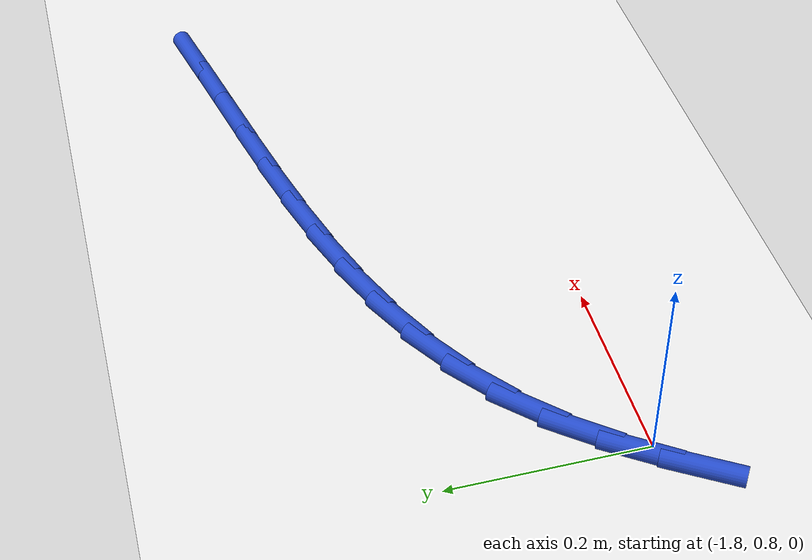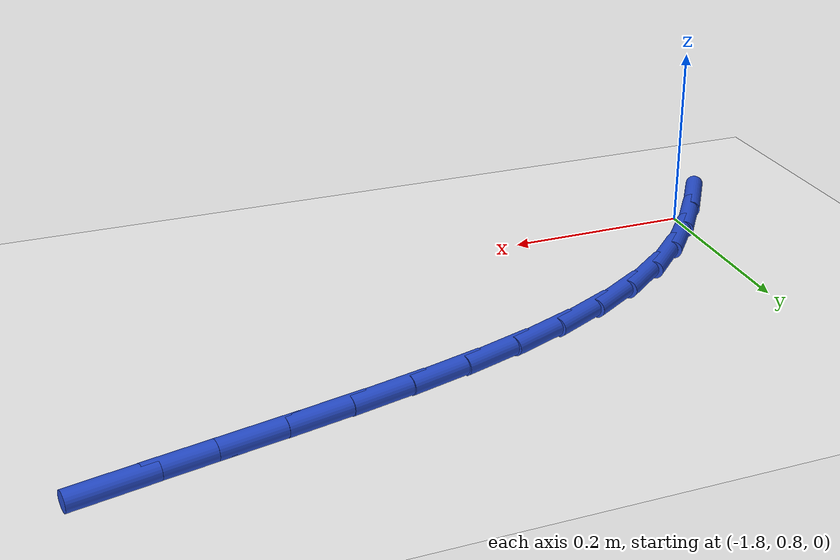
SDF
<sdf version="1.6">
 <world name="default">
  <model name="ground_plane">
   <static>1</static>
   <link name="link">
    <collision name="collision">
     <geometry><plane><normal>0 0 1</normal><size>100 100</size></plane></geometry>
     <surface><friction><ode><mu>100</mu><mu2>50</mu2></ode></friction></surface>
    </collision>
    <visual name="visual">
     <cast_shadows>0</cast_shadows>
     <geometry><plane><normal>0 0 1</normal><size>100 100</size></plane></geometry>
     <material>
      <script><uri>file://media/materials/scripts/gazebo.material</uri><name>Gazebo/WhiteGlow</name></script>
     </material>
    </visual>
   </link>
  </model>
  <model name="line">
   <link name="link_32">
    <pose>-1.1168090828954487 1.1126430414281687 0.01 0 1.57 0.21446894191371113</pose>
    <collision name="collision">
     <geometry><cylinder><radius>0.01</radius><length>0.08</length></cylinder></geometry>
    </collision>
    <visual name="visual">
     <material>
      <script><name>Gazebo/Blue</name><uri>file://media/materials/scripts/gazebo.material</uri></script>
     </material>
     <geometry><cylinder><radius>0.01</radius><length>0.08</length></cylinder></geometry>
    </visual>
   </link>
   <link name="link_33">
    <pose>-1.1804269312159106 1.098785872033754 0.01 0 1.57 0.20922212460255044</pose>
    <collision name="collision">
     <geometry><cylinder><radius>0.01</radius><length>0.08</length></cylinder></geometry>
    </collision>
    <visual name="visual">
     <material>
      <script><name>Gazebo/Blue</name><uri>file://media/materials/scripts/gazebo.material</uri></script>
     </material>
     <geometry><cylinder><radius>0.01</radius><length>0.08</length></cylinder></geometry>
    </visual>
   </link>
   <link name="link_34">
    <pose>-1.243558973728151 1.085381085537166 0.01 0 1.57 0.21056571889571146</pose>
    <collision name="collision">
     <geometry><cylinder><radius>0.01</radius><length>0.08</length></cylinder></geometry>
    </collision>
    <visual name="visual">
     <material>
      <script><name>Gazebo/Blue</name><uri>file://media/materials/scripts/gazebo.material</uri></script>
     </material>
     <geometry><cylinder><radius>0.01</radius><length>0.08</length></cylinder></geometry>
    </visual>
   </link>
   <link name="link_35">
    <pose>-1.3058577739040838 1.072065717823352 0.01 0 1.57 0.22224273042556789</pose>
    <collision name="collision">
     <geometry><cylinder><radius>0.01</radius><length>0.08</length></cylinder></geometry>
    </collision>
    <visual name="visual">
     <material>
      <script><name>Gazebo/Blue</name><uri>file://media/materials/scripts/gazebo.material</uri></script>
     </material>
     <geometry><cylinder><radius>0.01</radius><length>0.08</length></cylinder></geometry>
    </visual>
   </link>
   <link name="link_36">
    <pose>-1.3669779849305703 1.058254048390244 0.01 0 1.57 0.2448937818311748</pose>
    <collision name="collision">
     <geometry><cylinder><radius>0.01</radius><length>0.08</length></cylinder></geometry>
    </collision>
    <visual name="visual">
     <material>
      <script><name>Gazebo/Blue</name><uri>file://media/materials/scripts/gazebo.material</uri></script>
     </material>
     <geometry><cylinder><radius>0.01</radius><length>0.08</length></cylinder></geometry>
    </visual>
   </link>
   <link name="link_37">
    <pose>-1.4265742600175444 1.0433603542765746 0.01 0 1.57 0.27938862172942175</pose>
    <collision name="collision">
     <geometry><cylinder><radius>0.01</radius><length>0.08</length></cylinder></geometry>
    </collision>
    <visual name="visual">
     <material>
      <script><name>Gazebo/Blue</name><uri>file://media/materials/scripts/gazebo.material</uri></script>
     </material>
     <geometry><cylinder><radius>0.01</radius><length>0.08</length></cylinder></geometry>
    </visual>
   </link>
   <link name="link_38">
    <pose>-1.4843012523749377 1.0267989125210755 0.01 0 1.57 0.32678080154570166</pose>
    <collision name="collision">
     <geometry><cylinder><radius>0.01</radius><length>0.08</length></cylinder></geometry>
    </collision>
    <visual name="visual">
     <material>
      <script><name>Gazebo/Blue</name><uri>file://media/materials/scripts/gazebo.material</uri></script>
     </material>
     <geometry><cylinder><radius>0.01</radius><length>0.08</length></cylinder></geometry>
    </visual>
   </link>
   <link name="link_39">
    <pose>-1.5398136152126836 1.007984000162478 0.01 0 1.57 0.38818550506036686</pose>
    <collision name="collision">
     <geometry><cylinder><radius>0.01</radius><length>0.08</length></cylinder></geometry>
    </collision>
    <visual name="visual">
     <material>
      <script><name>Gazebo/Blue</name><uri>file://media/materials/scripts/gazebo.material</uri></script>
     </material>
     <geometry><cylinder><radius>0.01</radius><length>0.08</length></cylinder></geometry>
    </visual>
   </link>
   <link name="link_40">
    <pose>-1.5927660017407144 0.9863298942395147 0.01 0 1.57 0.46453423237397157</pose>
    <collision name="collision">
     <geometry><cylinder><radius>0.01</radius><length>0.08</length></cylinder></geometry>
    </collision>
    <visual name="visual">
     <material>
      <script><name>Gazebo/Blue</name><uri>file://media/materials/scripts/gazebo.material</uri></script>
     </material>
     <geometry><cylinder><radius>0.01</radius><length>0.08</length></cylinder></geometry>
    </visual>
   </link>
   <link name="link_41">
    <pose>-1.6428130651689627 0.9612508717909167 0.01 0 1.57 0.5561664135093526</pose>
    <collision name="collision">
     <geometry><cylinder><radius>0.01</radius><length>0.08</length></cylinder></geometry>
    </collision>
    <visual name="visual">
     <material>
      <script><name>Gazebo/Blue</name><uri>file://media/materials/scripts/gazebo.material</uri></script>
     </material>
     <geometry><cylinder><radius>0.01</radius><length>0.08</length></cylinder></geometry>
    </visual>
   </link>
   <link name="link_42">
    <pose>-1.6896094587073613 0.9321612098554167 0.01 0 1.57 0.6622784781364478</pose>
    <collision name="collision">
     <geometry><cylinder><radius>0.01</radius><length>0.08</length></cylinder></geometry>
    </collision>
    <visual name="visual">
     <material>
      <script><name>Gazebo/Blue</name><uri>file://media/materials/scripts/gazebo.material</uri></script>
     </material>
     <geometry><cylinder><radius>0.01</radius><length>0.08</length></cylinder></geometry>
    </visual>
   </link>
   <link name="link_43">
    <pose>-1.7328098355658432 0.8984751854717463 0.01 0 1.57 0.779974680356464</pose>
    <collision name="collision">
     <geometry><cylinder><radius>0.01</radius><length>0.08</length></cylinder></geometry>
    </collision>
    <visual name="visual">
     <material>
      <script><name>Gazebo/Blue</name><uri>file://media/materials/scripts/gazebo.material</uri></script>
     </material>
     <geometry><cylinder><radius>0.01</radius><length>0.08</length></cylinder></geometry>
    </visual>
   </link>
   <link name="link_44">
    <pose>-1.7720833611755642 0.8596253646607592 0.01 0 1.57 0.8879240431238885</pose>
    <collision name="collision">
     <geometry><cylinder><radius>0.01</radius><length>0.08</length></cylinder></geometry>
    </collision>
    <visual name="visual">
     <material>
      <script><name>Gazebo/Blue</name><uri>file://media/materials/scripts/gazebo.material</uri></script>
     </material>
     <geometry><cylinder><radius>0.01</radius><length>0.08</length></cylinder></geometry>
    </visual>
   </link>
   <link name="link_45">
    <pose>-1.8077151728721181 0.8158205901396262 0.01 0 1.57 0.9621269194762593</pose>
    <collision name="collision">
     <geometry><cylinder><radius>0.01</radius><length>0.08</length></cylinder></geometry>
    </collision>
    <visual name="visual">
     <material>
      <script><name>Gazebo/Blue</name><uri>file://media/materials/scripts/gazebo.material</uri></script>
     </material>
     <geometry><cylinder><radius>0.01</radius><length>0.08</length></cylinder></geometry>
    </visual>
   </link>
   <link name="link_46">
    <pose>-1.840821910692714 0.7683176033454769 0.01 0 1.57 1.0037604172660806</pose>
    <collision name="collision">
     <geometry><cylinder><radius>0.01</radius><length>0.08</length></cylinder></geometry>
    </collision>
    <visual name="visual">
     <material>
      <script><name>Gazebo/Blue</name><uri>file://media/materials/scripts/gazebo.material</uri></script>
     </material>
     <geometry><cylinder><radius>0.01</radius><length>0.08</length></cylinder></geometry>
    </visual>
   </link>
  </model>
 </world>
</sdf>
